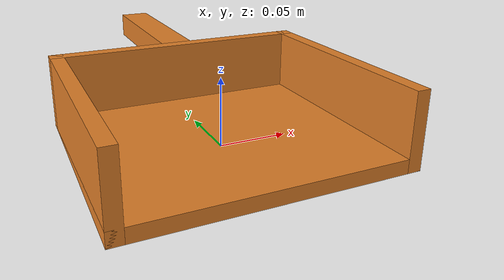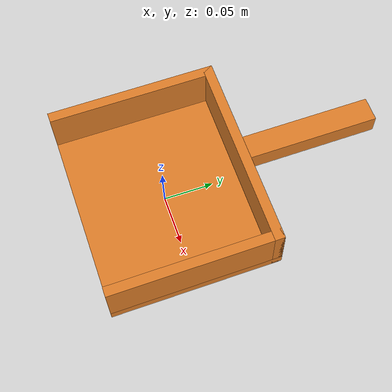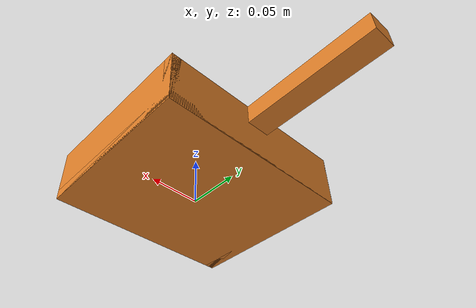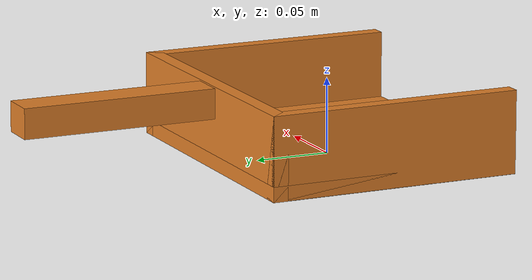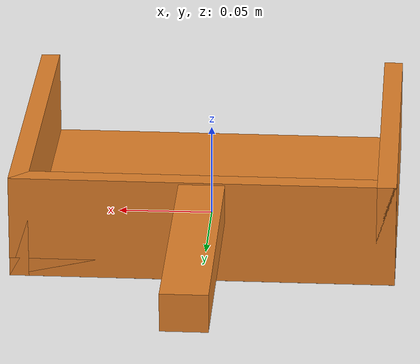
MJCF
<mujoco model="dustpan_prim_narrow_orange">
  <compiler angle="radian"/>
  <asset>
  </asset>
  <worldbody>
    <body name="dustpan_prim_narrow_orange">
      <freejoint/>
      <geom name="dustpan_prim_narrow_orange_g0" type="box" size="0.1 0.085 0.005" pos="0 0 0.005" rgba="0.88 0.5 0.16 1" mass="0.01" friction="0.05 0.05 0.005" condim="4"/>
      <geom name="dustpan_prim_narrow_orange_g1" type="box" size="0.1 0.005 0.0275" pos="0 0.08 0.0275" rgba="0.88 0.5 0.16 1" mass="0.01" friction="0.05 0.05 0.005" condim="4"/>
      <geom name="dustpan_prim_narrow_orange_g2" type="box" size="0.005 0.085 0.0275" pos="-0.095 0 0.0275" rgba="0.88 0.5 0.16 1" mass="0.01" friction="0.05 0.05 0.005" condim="4"/>
      <geom name="dustpan_prim_narrow_orange_g3" type="box" size="0.005 0.085 0.0275" pos="0.095 0 0.0275" rgba="0.88 0.5 0.16 1" mass="0.01" friction="0.05 0.05 0.005" condim="4"/>
      <geom name="dustpan_prim_narrow_orange_g4" type="box" size="0.012 0.065 0.01" pos="0 0.15 0.044" rgba="0.88 0.5 0.16 1" mass="0.01" friction="0.05 0.05 0.005" condim="4"/>
    </body>
  </worldbody>
</mujoco>
